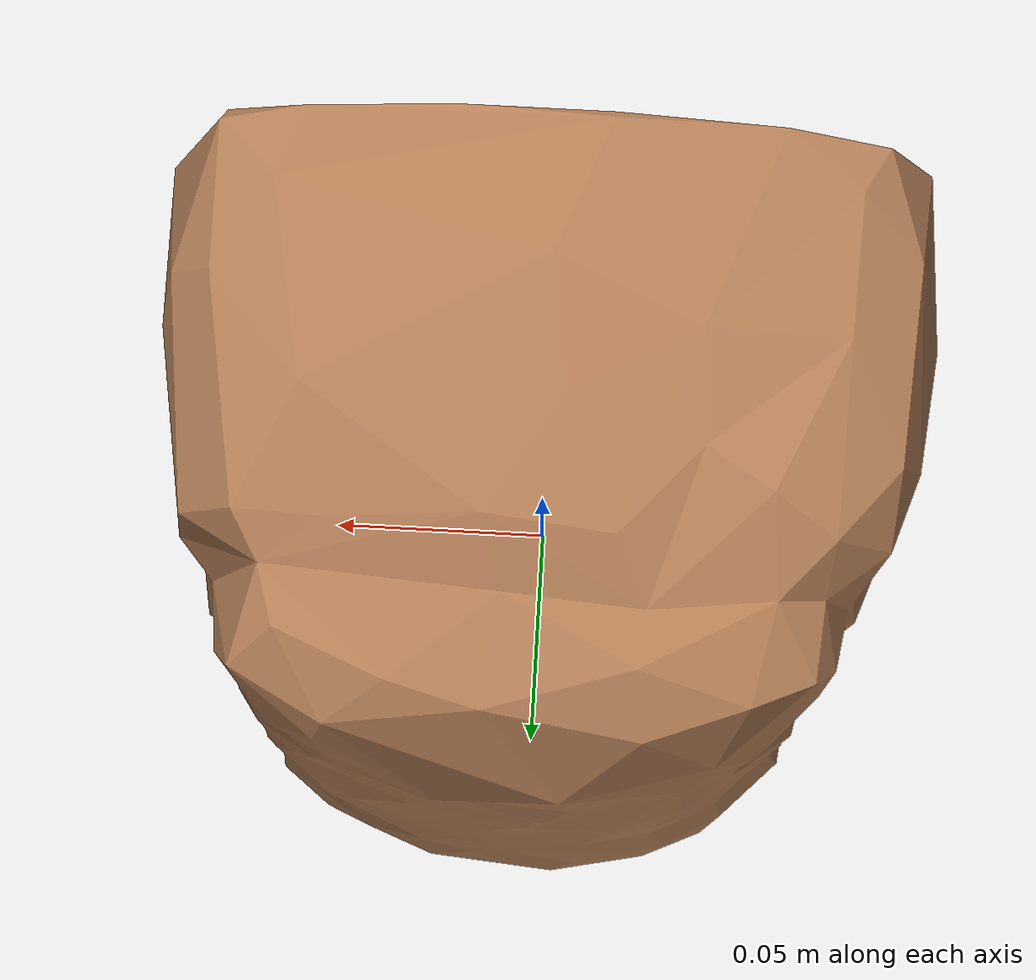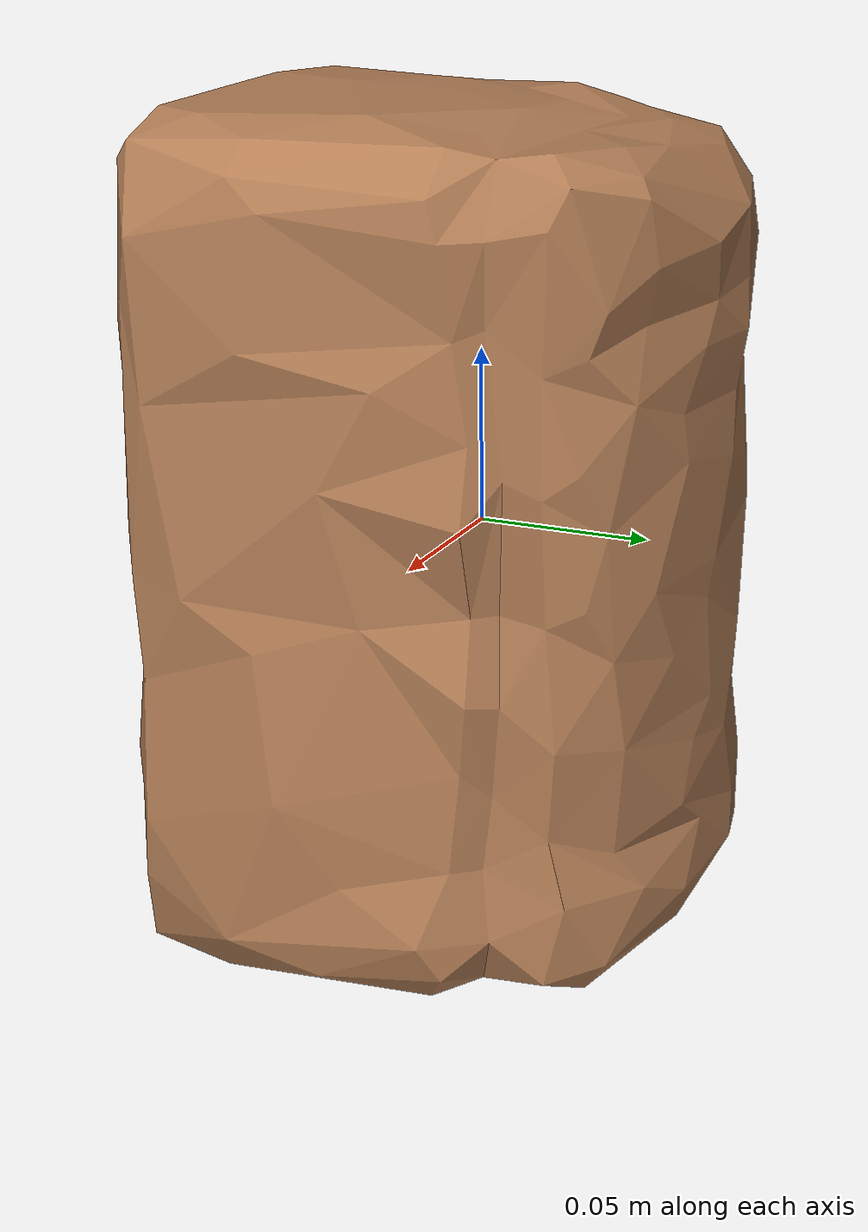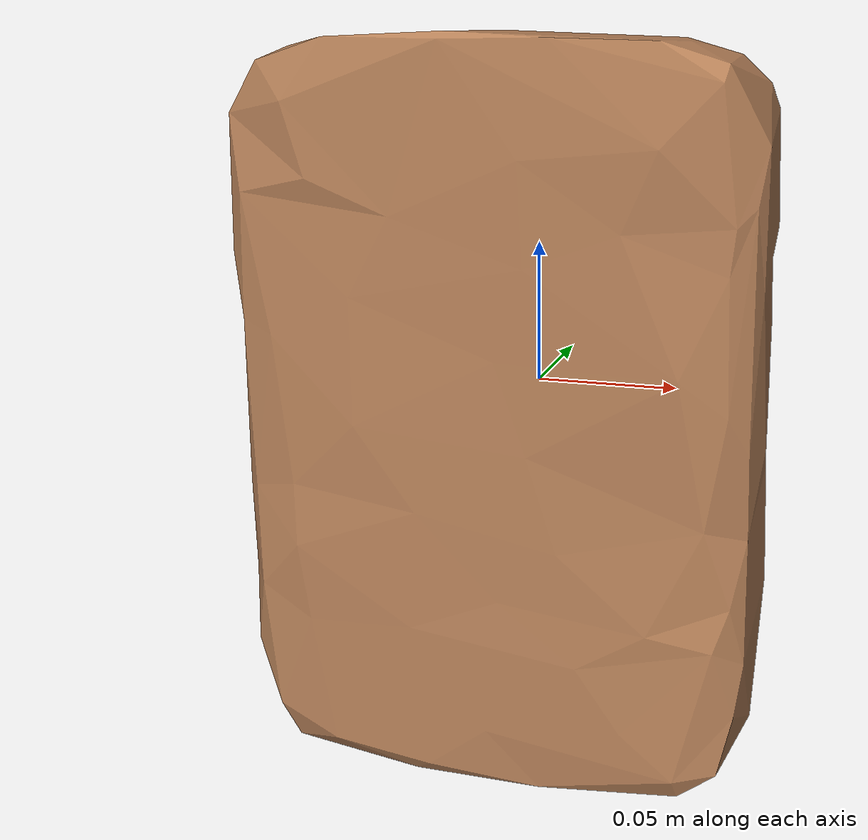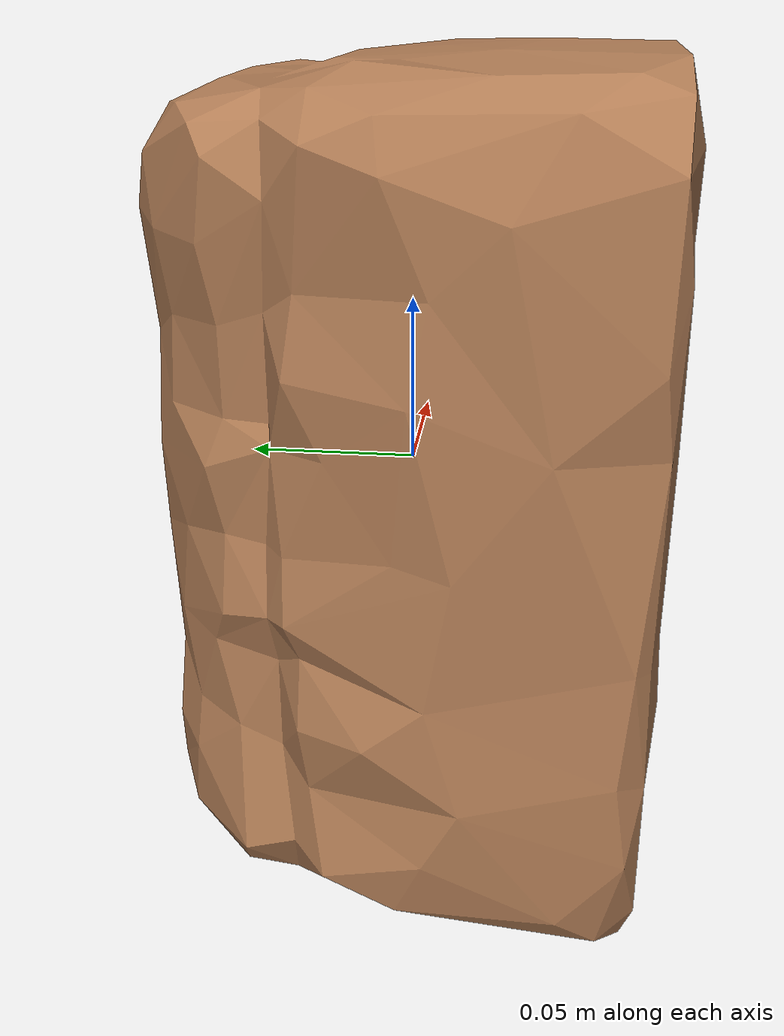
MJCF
<mujoco model="Bread_7">
  <compiler autolimits="true" boundmass="0.01" angle="radian"/>
  <default>
    <default class="/">
      <default class="__VISUAL_MJT__">
        <geom contype="0" conaffinity="0" group="0"/>
      </default>
      <default class="__STRUCTURAL_MJT__">
        <geom contype="8" conaffinity="15" group="4" friction="0.90000000000000002 0.90000000000000002 0.001" solref="0.025000000000000001 1" solimp="0.998 0.998 0.001"/>
      </default>
      <default class="__DYNAMIC_MJT__">
        <geom contype="1" conaffinity="15" group="4" friction="0.90000000000000002 0.90000000000000002 0.001" solref="0.025000000000000001 1" solimp="0.998 0.998 0.001"/>
      </default>
    </default>
  </default>
  <asset>
    <texture name="Bread3_Mat2" type="2d" file="Bread3_AlbedoTransparency.png"/>
    <material name="material_Bread3_Mat2" class="/" texture="Bread3_Mat2" specular="0.5" shininess="0.5" rgba="0.92647060000000003 0.67991290000000004 0.49048439999999999 1"/>
    <mesh name="Bread_7_bread3_b_mesh" class="/" file="Bread_7_bread3_b_mesh/Bread_7_bread3_b_mesh.obj" scale="1 1 1"/>
  </asset>
  <worldbody>
    <body name="Bread_7">
      <joint name="Bread_7_free" class="/" type="free" pos="0 0 0" axis="0 0 1" stiffness="0" range="0 0" armature="0" damping="0.10000000000000001" frictionloss="0"/>
      <body name="Bread_7_bread3_b_mesh" pos="-0 0.0054599999999999996 0" quat="1 0 0 0">
        <geom name="Bread_7_bread3_b_mesh" class="__VISUAL_MJT__" type="mesh" material="material_Bread3_Mat2" shellinertia="false" mesh="Bread_7_bread3_b_mesh"/>
        <geom name="Bread_7_PrimitiveCollider_0" class="__DYNAMIC_MJT__" type="box" size="0.079882100224494934 0.054566841572523117 0.11911721527576447" rgba="0 1 0 1" pos="-0 -0.024700000882148743 0" quat="1 0 0 0"/>
        <geom name="Bread_7_PrimitiveCollider_1" class="__DYNAMIC_MJT__" type="box" size="0.06789977103471756 0.019314657896757126 0.11316138505935669" rgba="0 1 0 1" pos="-0 0.049031216651201248 0" quat="1 0 0 0"/>
      </body>
    </body>
  </worldbody>
</mujoco>
